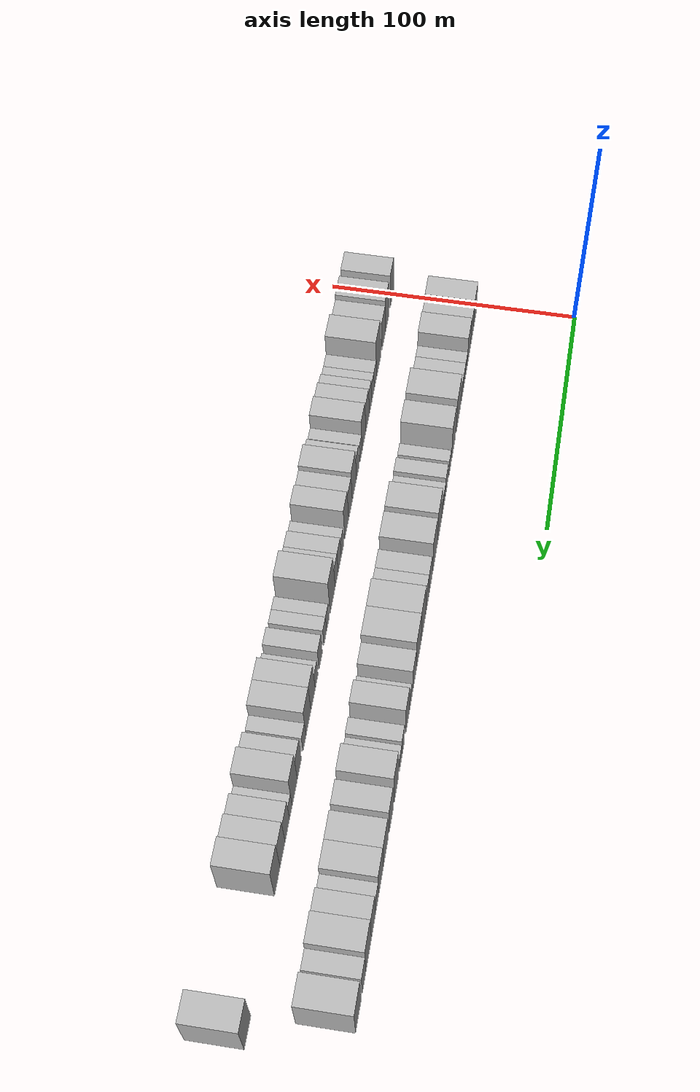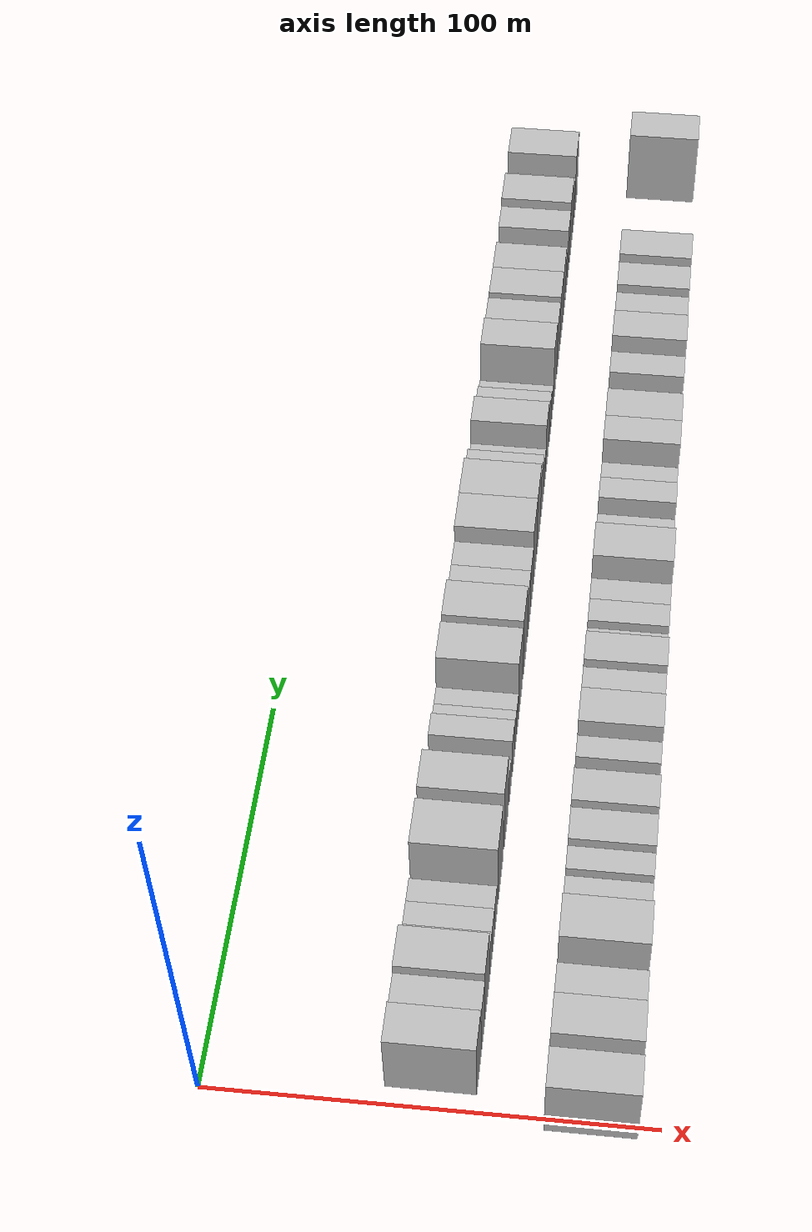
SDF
<sdf version="1.6">
 <world name="default">
  <model name="building_35">
   <static>1</static>
   <pose>50.0000 8.7507 0 0.000000 0.000000 0.000000</pose>
   <link name="link">
    <pose>0 0 10.50 0 0 0</pose>
    <collision name="collision"><geometry><box><size>20.0000 9.2780 21.0000</size></box></geometry></collision>
    <visual name="visual">
     <cast_shadows>0</cast_shadows>
     <geometry><box><size>20.0000 9.2780 21.0000</size></box></geometry>
     <material>
      <script>
       <uri>model://HANNAS_wall/materials/scripts</uri>
       <uri>model://HANNAS_wall/materials/textures</uri>
       <name>vrc/HANNAS_wall</name>
      </script>
     </material>
    </visual>
   </link>
  </model>
  <model name="building_36">
   <static>1</static>
   <pose>50.0000 17.6079 0 0.000000 0.000000 0.000000</pose>
   <link name="link">
    <pose>0 0 9.00 0 0 0</pose>
    <collision name="collision"><geometry><box><size>20.0000 8.4364 18.0000</size></box></geometry></collision>
    <visual name="visual">
     <cast_shadows>0</cast_shadows>
     <geometry><box><size>20.0000 8.4364 18.0000</size></box></geometry>
     <material>
      <script>
       <uri>model://HANNAS_wall/materials/scripts</uri>
       <uri>model://HANNAS_wall/materials/textures</uri>
       <name>vrc/HANNAS_wall</name>
      </script>
     </material>
    </visual>
   </link>
  </model>
  <model name="building_37">
   <static>1</static>
   <pose>50.0000 26.8337 0 0.000000 0.000000 0.000000</pose>
   <link name="link">
    <pose>0 0 10.50 0 0 0</pose>
    <collision name="collision"><geometry><box><size>20.0000 10.0153 21.0000</size></box></geometry></collision>
    <visual name="visual">
     <cast_shadows>0</cast_shadows>
     <geometry><box><size>20.0000 10.0153 21.0000</size></box></geometry>
     <material>
      <script>
       <uri>model://HANNAS_wall/materials/scripts</uri>
       <uri>model://HANNAS_wall/materials/textures</uri>
       <name>vrc/HANNAS_wall</name>
      </script>
     </material>
    </visual>
   </link>
  </model>
  <model name="building_38">
   <static>1</static>
   <pose>50.0000 34.4744 0 0.000000 0.000000 0.000000</pose>
   <link name="link">
    <pose>0 0 6.00 0 0 0</pose>
    <collision name="collision"><geometry><box><size>20.0000 5.2660 12.0000</size></box></geometry></collision>
    <visual name="visual">
     <cast_shadows>0</cast_shadows>
     <geometry><box><size>20.0000 5.2660 12.0000</size></box></geometry>
     <material>
      <script>
       <uri>model://HANNAS_wall/materials/scripts</uri>
       <uri>model://HANNAS_wall/materials/textures</uri>
       <name>vrc/HANNAS_wall</name>
      </script>
     </material>
    </visual>
   </link>
  </model>
  <model name="building_39">
   <static>1</static>
   <pose>50.0000 40.0444 0 0.000000 0.000000 0.000000</pose>
   <link name="link">
    <pose>0 0 6.00 0 0 0</pose>
    <collision name="collision"><geometry><box><size>20.0000 5.8741 12.0000</size></box></geometry></collision>
    <visual name="visual">
     <cast_shadows>0</cast_shadows>
     <geometry><box><size>20.0000 5.8741 12.0000</size></box></geometry>
     <material>
      <script>
       <uri>model://HANNAS_wall/materials/scripts</uri>
       <uri>model://HANNAS_wall/materials/textures</uri>
       <name>vrc/HANNAS_wall</name>
      </script>
     </material>
    </visual>
   </link>
  </model>
  <model name="building_40">
   <static>1</static>
   <pose>50.0000 45.8900 0 0.000000 0.000000 0.000000</pose>
   <link name="link">
    <pose>0 0 6.00 0 0 0</pose>
    <collision name="collision"><geometry><box><size>20.0000 5.8171 12.0000</size></box></geometry></collision>
    <visual name="visual">
     <cast_shadows>0</cast_shadows>
     <geometry><box><size>20.0000 5.8171 12.0000</size></box></geometry>
     <material>
      <script>
       <uri>model://HANNAS_wall/materials/scripts</uri>
       <uri>model://HANNAS_wall/materials/textures</uri>
       <name>vrc/HANNAS_wall</name>
      </script>
     </material>
    </visual>
   </link>
  </model>
  <model name="building_41">
   <static>1</static>
   <pose>50.0000 56.6589 0 0.000000 0.000000 0.000000</pose>
   <link name="link">
    <pose>0 0 12.00 0 0 0</pose>
    <collision name="collision"><geometry><box><size>20.0000 11.7206 24.0000</size></box></geometry></collision>
    <visual name="visual">
     <cast_shadows>0</cast_shadows>
     <geometry><box><size>20.0000 11.7206 24.0000</size></box></geometry>
     <material>
      <script>
       <uri>model://HANNAS_wall/materials/scripts</uri>
       <uri>model://HANNAS_wall/materials/textures</uri>
       <name>vrc/HANNAS_wall</name>
      </script>
     </material>
    </visual>
   </link>
  </model>
  <model name="building_42">
   <static>1</static>
   <pose>50.0000 70.6065 0 0.000000 0.000000 0.000000</pose>
   <link name="link">
    <pose>0 0 12.00 0 0 0</pose>
    <collision name="collision"><geometry><box><size>20.0000 10.1746 24.0000</size></box></geometry></collision>
    <visual name="visual">
     <cast_shadows>0</cast_shadows>
     <geometry><box><size>20.0000 10.1746 24.0000</size></box></geometry>
     <material>
      <script>
       <uri>model://HANNAS_wall/materials/scripts</uri>
       <uri>model://HANNAS_wall/materials/textures</uri>
       <name>vrc/HANNAS_wall</name>
      </script>
     </material>
    </visual>
   </link>
  </model>
  <model name="building_43">
   <static>1</static>
   <pose>50.0000 80.3176 0 0.000000 0.000000 0.000000</pose>
   <link name="link">
    <pose>0 0 6.00 0 0 0</pose>
    <collision name="collision"><geometry><box><size>20.0000 5.2476 12.0000</size></box></geometry></collision>
    <visual name="visual">
     <cast_shadows>0</cast_shadows>
     <geometry><box><size>20.0000 5.2476 12.0000</size></box></geometry>
     <material>
      <script>
       <uri>model://HANNAS_wall/materials/scripts</uri>
       <uri>model://HANNAS_wall/materials/textures</uri>
       <name>vrc/HANNAS_wall</name>
      </script>
     </material>
    </visual>
   </link>
  </model>
  <model name="building_44">
   <static>1</static>
   <pose>50.0000 89.0435 0 0.000000 0.000000 0.000000</pose>
   <link name="link">
    <pose>0 0 7.50 0 0 0</pose>
    <collision name="collision"><geometry><box><size>20.0000 6.2043 15.0000</size></box></geometry></collision>
    <visual name="visual">
     <cast_shadows>0</cast_shadows>
     <geometry><box><size>20.0000 6.2043 15.0000</size></box></geometry>
     <material>
      <script>
       <uri>model://HANNAS_wall/materials/scripts</uri>
       <uri>model://HANNAS_wall/materials/textures</uri>
       <name>vrc/HANNAS_wall</name>
      </script>
     </material>
    </visual>
   </link>
  </model>
  <model name="building_45">
   <static>1</static>
   <pose>50.0000 94.5717 0 0.000000 0.000000 0.000000</pose>
   <link name="link">
    <pose>0 0 6.00 0 0 0</pose>
    <collision name="collision"><geometry><box><size>20.0000 4.8520 12.0000</size></box></geometry></collision>
    <visual name="visual">
     <cast_shadows>0</cast_shadows>
     <geometry><box><size>20.0000 4.8520 12.0000</size></box></geometry>
     <material>
      <script>
       <uri>model://HANNAS_wall/materials/scripts</uri>
       <uri>model://HANNAS_wall/materials/textures</uri>
       <name>vrc/HANNAS_wall</name>
      </script>
     </material>
    </visual>
   </link>
  </model>
  <model name="building_46">
   <static>1</static>
   <pose>50.0000 99.4362 0 0.000000 0.000000 0.000000</pose>
   <link name="link">
    <pose>0 0 6.00 0 0 0</pose>
    <collision name="collision"><geometry><box><size>20.0000 4.8771 12.0000</size></box></geometry></collision>
    <visual name="visual">
     <cast_shadows>0</cast_shadows>
     <geometry><box><size>20.0000 4.8771 12.0000</size></box></geometry>
     <material>
      <script>
       <uri>model://HANNAS_wall/materials/scripts</uri>
       <uri>model://HANNAS_wall/materials/textures</uri>
       <name>vrc/HANNAS_wall</name>
      </script>
     </material>
    </visual>
   </link>
  </model>
  <model name="building_47">
   <static>1</static>
   <pose>50.0000 107.2916 0 0.000000 0.000000 0.000000</pose>
   <link name="link">
    <pose>0 0 12.00 0 0 0</pose>
    <collision name="collision"><geometry><box><size>20.0000 10.8336 24.0000</size></box></geometry></collision>
    <visual name="visual">
     <cast_shadows>0</cast_shadows>
     <geometry><box><size>20.0000 10.8336 24.0000</size></box></geometry>
     <material>
      <script>
       <uri>model://HANNAS_wall/materials/scripts</uri>
       <uri>model://HANNAS_wall/materials/textures</uri>
       <name>vrc/HANNAS_wall</name>
      </script>
     </material>
    </visual>
   </link>
  </model>
  <model name="building_48">
   <static>1</static>
   <pose>50.0000 120.1184 0 0.000000 0.000000 0.000000</pose>
   <link name="link">
    <pose>0 0 12.00 0 0 0</pose>
    <collision name="collision"><geometry><box><size>20.0000 10.8199 24.0000</size></box></geometry></collision>
    <visual name="visual">
     <cast_shadows>0</cast_shadows>
     <geometry><box><size>20.0000 10.8199 24.0000</size></box></geometry>
     <material>
      <script>
       <uri>model://HANNAS_wall/materials/scripts</uri>
       <uri>model://HANNAS_wall/materials/textures</uri>
       <name>vrc/HANNAS_wall</name>
      </script>
     </material>
    </visual>
   </link>
  </model>
  <model name="building_49">
   <static>1</static>
   <pose>50.0000 131.3602 0 0.000000 0.000000 0.000000</pose>
   <link name="link">
    <pose>0 0 9.00 0 0 0</pose>
    <collision name="collision"><geometry><box><size>20.0000 7.6637 18.0000</size></box></geometry></collision>
    <visual name="visual">
     <cast_shadows>0</cast_shadows>
     <geometry><box><size>20.0000 7.6637 18.0000</size></box></geometry>
     <material>
      <script>
       <uri>model://HANNAS_wall/materials/scripts</uri>
       <uri>model://HANNAS_wall/materials/textures</uri>
       <name>vrc/HANNAS_wall</name>
      </script>
     </material>
    </visual>
   </link>
  </model>
  <model name="building_50">
   <static>1</static>
   <pose>50.0000 138.9554 0 0.000000 0.000000 0.000000</pose>
   <link name="link">
    <pose>0 0 9.00 0 0 0</pose>
    <collision name="collision"><geometry><box><size>20.0000 7.5268 18.0000</size></box></geometry></collision>
    <visual name="visual">
     <cast_shadows>0</cast_shadows>
     <geometry><box><size>20.0000 7.5268 18.0000</size></box></geometry>
     <material>
      <script>
       <uri>model://HANNAS_wall/materials/scripts</uri>
       <uri>model://HANNAS_wall/materials/textures</uri>
       <name>vrc/HANNAS_wall</name>
      </script>
     </material>
    </visual>
   </link>
  </model>
  <model name="building_51">
   <static>1</static>
   <pose>50.0000 148.2632 0 0.000000 0.000000 0.000000</pose>
   <link name="link">
    <pose>0 0 12.00 0 0 0</pose>
    <collision name="collision"><geometry><box><size>20.0000 11.0887 24.0000</size></box></geometry></collision>
    <visual name="visual">
     <cast_shadows>0</cast_shadows>
     <geometry><box><size>20.0000 11.0887 24.0000</size></box></geometry>
     <material>
      <script>
       <uri>model://HANNAS_wall/materials/scripts</uri>
       <uri>model://HANNAS_wall/materials/textures</uri>
       <name>vrc/HANNAS_wall</name>
      </script>
     </material>
    </visual>
   </link>
  </model>
  <model name="building_52">
   <static>1</static>
   <pose>50.0000 159.6565 0 0.000000 0.000000 0.000000</pose>
   <link name="link">
    <pose>0 0 12.00 0 0 0</pose>
    <collision name="collision"><geometry><box><size>20.0000 11.6979 24.0000</size></box></geometry></collision>
    <visual name="visual">
     <cast_shadows>0</cast_shadows>
     <geometry><box><size>20.0000 11.6979 24.0000</size></box></geometry>
     <material>
      <script>
       <uri>model://HANNAS_wall/materials/scripts</uri>
       <uri>model://HANNAS_wall/materials/textures</uri>
       <name>vrc/HANNAS_wall</name>
      </script>
     </material>
    </visual>
   </link>
  </model>
  <model name="building_53">
   <static>1</static>
   <pose>50.0000 169.7641 0 0.000000 0.000000 0.000000</pose>
   <link name="link">
    <pose>0 0 9.00 0 0 0</pose>
    <collision name="collision"><geometry><box><size>20.0000 8.5172 18.0000</size></box></geometry></collision>
    <visual name="visual">
     <cast_shadows>0</cast_shadows>
     <geometry><box><size>20.0000 8.5172 18.0000</size></box></geometry>
     <material>
      <script>
       <uri>model://HANNAS_wall/materials/scripts</uri>
       <uri>model://HANNAS_wall/materials/textures</uri>
       <name>vrc/HANNAS_wall</name>
      </script>
     </material>
    </visual>
   </link>
  </model>
  <model name="building_54">
   <static>1</static>
   <pose>50.0000 178.7711 0 0.000000 0.000000 0.000000</pose>
   <link name="link">
    <pose>0 0 6.00 0 0 0</pose>
    <collision name="collision"><geometry><box><size>20.0000 5.4969 12.0000</size></box></geometry></collision>
    <visual name="visual">
     <cast_shadows>0</cast_shadows>
     <geometry><box><size>20.0000 5.4969 12.0000</size></box></geometry>
     <material>
      <script>
       <uri>model://HANNAS_wall/materials/scripts</uri>
       <uri>model://HANNAS_wall/materials/textures</uri>
       <name>vrc/HANNAS_wall</name>
      </script>
     </material>
    </visual>
   </link>
  </model>
  <model name="building_55">
   <static>1</static>
   <pose>50.0000 185.8863 0 0.000000 0.000000 0.000000</pose>
   <link name="link">
    <pose>0 0 10.50 0 0 0</pose>
    <collision name="collision"><geometry><box><size>20.0000 8.7335 21.0000</size></box></geometry></collision>
    <visual name="visual">
     <cast_shadows>0</cast_shadows>
     <geometry><box><size>20.0000 8.7335 21.0000</size></box></geometry>
     <material>
      <script>
       <uri>model://HANNAS_wall/materials/scripts</uri>
       <uri>model://HANNAS_wall/materials/textures</uri>
       <name>vrc/HANNAS_wall</name>
      </script>
     </material>
    </visual>
   </link>
  </model>
  <model name="building_56">
   <static>1</static>
   <pose>50.0000 196.4135 0 0.000000 0.000000 0.000000</pose>
   <link name="link">
    <pose>0 0 7.50 0 0 0</pose>
    <collision name="collision"><geometry><box><size>20.0000 6.3210 15.0000</size></box></geometry></collision>
    <visual name="visual">
     <cast_shadows>0</cast_shadows>
     <geometry><box><size>20.0000 6.3210 15.0000</size></box></geometry>
     <material>
      <script>
       <uri>model://HANNAS_wall/materials/scripts</uri>
       <uri>model://HANNAS_wall/materials/textures</uri>
       <name>vrc/HANNAS_wall</name>
      </script>
     </material>
    </visual>
   </link>
  </model>
  <model name="building_57">
   <static>1</static>
   <pose>50.0000 202.1639 0 0.000000 0.000000 0.000000</pose>
   <link name="link">
    <pose>0 0 6.00 0 0 0</pose>
    <collision name="collision"><geometry><box><size>20.0000 5.1798 12.0000</size></box></geometry></collision>
    <visual name="visual">
     <cast_shadows>0</cast_shadows>
     <geometry><box><size>20.0000 5.1798 12.0000</size></box></geometry>
     <material>
      <script>
       <uri>model://HANNAS_wall/materials/scripts</uri>
       <uri>model://HANNAS_wall/materials/textures</uri>
       <name>vrc/HANNAS_wall</name>
      </script>
     </material>
    </visual>
   </link>
  </model>
  <model name="building_58">
   <static>1</static>
   <pose>50.0000 211.7438 0 0.000000 0.000000 0.000000</pose>
   <link name="link">
    <pose>0 0 12.00 0 0 0</pose>
    <collision name="collision"><geometry><box><size>20.0000 9.9800 24.0000</size></box></geometry></collision>
    <visual name="visual">
     <cast_shadows>0</cast_shadows>
     <geometry><box><size>20.0000 9.9800 24.0000</size></box></geometry>
     <material>
      <script>
       <uri>model://HANNAS_wall/materials/scripts</uri>
       <uri>model://HANNAS_wall/materials/textures</uri>
       <name>vrc/HANNAS_wall</name>
      </script>
     </material>
    </visual>
   </link>
  </model>
  <model name="building_59">
   <static>1</static>
   <pose>50.0000 223.2712 0 0.000000 0.000000 0.000000</pose>
   <link name="link">
    <pose>0 0 10.50 0 0 0</pose>
    <collision name="collision"><geometry><box><size>20.0000 9.0747 21.0000</size></box></geometry></collision>
    <visual name="visual">
     <cast_shadows>0</cast_shadows>
     <geometry><box><size>20.0000 9.0747 21.0000</size></box></geometry>
     <material>
      <script>
       <uri>model://HANNAS_wall/materials/scripts</uri>
       <uri>model://HANNAS_wall/materials/textures</uri>
       <name>vrc/HANNAS_wall</name>
      </script>
     </material>
    </visual>
   </link>
  </model>
  <model name="building_60">
   <static>1</static>
   <pose>50.0000 234.9717 0 0.000000 0.000000 0.000000</pose>
   <link name="link">
    <pose>0 0 10.50 0 0 0</pose>
    <collision name="collision"><geometry><box><size>20.0000 10.3262 21.0000</size></box></geometry></collision>
    <visual name="visual">
     <cast_shadows>0</cast_shadows>
     <geometry><box><size>20.0000 10.3262 21.0000</size></box></geometry>
     <material>
      <script>
       <uri>model://HANNAS_wall/materials/scripts</uri>
       <uri>model://HANNAS_wall/materials/textures</uri>
       <name>vrc/HANNAS_wall</name>
      </script>
     </material>
    </visual>
   </link>
  </model>
  <model name="building_61">
   <static>1</static>
   <pose>50.0000 245.2067 0 0.000000 0.000000 0.000000</pose>
   <link name="link">
    <pose>0 0 10.50 0 0 0</pose>
    <collision name="collision"><geometry><box><size>20.0000 10.1438 21.0000</size></box></geometry></collision>
    <visual name="visual">
     <cast_shadows>0</cast_shadows>
     <geometry><box><size>20.0000 10.1438 21.0000</size></box></geometry>
     <material>
      <script>
       <uri>model://HANNAS_wall/materials/scripts</uri>
       <uri>model://HANNAS_wall/materials/textures</uri>
       <name>vrc/HANNAS_wall</name>
      </script>
     </material>
    </visual>
   </link>
  </model>
  <model name="building_62">
   <static>1</static>
   <pose>50.0000 253.5628 0 0.000000 0.000000 0.000000</pose>
   <link name="link">
    <pose>0 0 7.50 0 0 0</pose>
    <collision name="collision"><geometry><box><size>20.0000 6.5683 15.0000</size></box></geometry></collision>
    <visual name="visual">
     <cast_shadows>0</cast_shadows>
     <geometry><box><size>20.0000 6.5683 15.0000</size></box></geometry>
     <material>
      <script>
       <uri>model://HANNAS_wall/materials/scripts</uri>
       <uri>model://HANNAS_wall/materials/textures</uri>
       <name>vrc/HANNAS_wall</name>
      </script>
     </material>
    </visual>
   </link>
  </model>
  <model name="building_63">
   <static>1</static>
   <pose>50.0000 261.2001 0 0.000000 0.000000 0.000000</pose>
   <link name="link">
    <pose>0 0 10.50 0 0 0</pose>
    <collision name="collision"><geometry><box><size>20.0000 8.7063 21.0000</size></box></geometry></collision>
    <visual name="visual">
     <cast_shadows>0</cast_shadows>
     <geometry><box><size>20.0000 8.7063 21.0000</size></box></geometry>
     <material>
      <script>
       <uri>model://HANNAS_wall/materials/scripts</uri>
       <uri>model://HANNAS_wall/materials/textures</uri>
       <name>vrc/HANNAS_wall</name>
      </script>
     </material>
    </visual>
   </link>
  </model>
  <model name="building_64">
   <static>1</static>
   <pose>50.0000 270.9982 0 0.000000 0.000000 0.000000</pose>
   <link name="link">
    <pose>0 0 12.00 0 0 0</pose>
    <collision name="collision"><geometry><box><size>20.0000 10.8898 24.0000</size></box></geometry></collision>
    <visual name="visual">
     <cast_shadows>0</cast_shadows>
     <geometry><box><size>20.0000 10.8898 24.0000</size></box></geometry>
     <material>
      <script>
       <uri>model://HANNAS_wall/materials/scripts</uri>
       <uri>model://HANNAS_wall/materials/textures</uri>
       <name>vrc/HANNAS_wall</name>
      </script>
     </material>
    </visual>
   </link>
  </model>
  <model name="building_65">
   <static>1</static>
   <pose>50.0000 280.0937 0 0.000000 0.000000 0.000000</pose>
   <link name="link">
    <pose>0 0 9.00 0 0 0</pose>
    <collision name="collision"><geometry><box><size>20.0000 7.3012 18.0000</size></box></geometry></collision>
    <visual name="visual">
     <cast_shadows>0</cast_shadows>
     <geometry><box><size>20.0000 7.3012 18.0000</size></box></geometry>
     <material>
      <script>
       <uri>model://HANNAS_wall/materials/scripts</uri>
       <uri>model://HANNAS_wall/materials/textures</uri>
       <name>vrc/HANNAS_wall</name>
      </script>
     </material>
    </visual>
   </link>
  </model>
  <model name="building_66">
   <static>1</static>
   <pose>50.0000 291.3657 0 0.000000 0.000000 0.000000</pose>
   <link name="link">
    <pose>0 0 12.00 0 0 0</pose>
    <collision name="collision"><geometry><box><size>20.0000 11.2427 24.0000</size></box></geometry></collision>
    <visual name="visual">
     <cast_shadows>0</cast_shadows>
     <geometry><box><size>20.0000 11.2427 24.0000</size></box></geometry>
     <material>
      <script>
       <uri>model://HANNAS_wall/materials/scripts</uri>
       <uri>model://HANNAS_wall/materials/textures</uri>
       <name>vrc/HANNAS_wall</name>
      </script>
     </material>
    </visual>
   </link>
  </model>
  <model name="building_97">
   <static>1</static>
   <pose>85.0000 2.1428 0 0.000000 0.000000 0.000000</pose>
   <link name="link">
    <pose>0 0 10.50 0 0 0</pose>
    <collision name="collision"><geometry><box><size>20.0000 9.1872 21.0000</size></box></geometry></collision>
    <visual name="visual">
     <cast_shadows>0</cast_shadows>
     <geometry><box><size>20.0000 9.1872 21.0000</size></box></geometry>
     <material>
      <script>
       <uri>model://HANNAS_wall/materials/scripts</uri>
       <uri>model://HANNAS_wall/materials/textures</uri>
       <name>vrc/HANNAS_wall</name>
      </script>
     </material>
    </visual>
   </link>
  </model>
  <model name="building_98">
   <static>1</static>
   <pose>85.0000 14.4837 0 0.000000 0.000000 0.000000</pose>
   <link name="link">
    <pose>0 0 10.50 0 0 0</pose>
    <collision name="collision"><geometry><box><size>20.0000 9.4946 21.0000</size></box></geometry></collision>
    <visual name="visual">
     <cast_shadows>0</cast_shadows>
     <geometry><box><size>20.0000 9.4946 21.0000</size></box></geometry>
     <material>
      <script>
       <uri>model://HANNAS_wall/materials/scripts</uri>
       <uri>model://HANNAS_wall/materials/textures</uri>
       <name>vrc/HANNAS_wall</name>
      </script>
     </material>
    </visual>
   </link>
  </model>
  <model name="building_99">
   <static>1</static>
   <pose>85.0000 23.5732 0 0.000000 0.000000 0.000000</pose>
   <link name="link">
    <pose>0 0 9.00 0 0 0</pose>
    <collision name="collision"><geometry><box><size>20.0000 8.6843 18.0000</size></box></geometry></collision>
    <visual name="visual">
     <cast_shadows>0</cast_shadows>
     <geometry><box><size>20.0000 8.6843 18.0000</size></box></geometry>
     <material>
      <script>
       <uri>model://HANNAS_wall/materials/scripts</uri>
       <uri>model://HANNAS_wall/materials/textures</uri>
       <name>vrc/HANNAS_wall</name>
      </script>
     </material>
    </visual>
   </link>
  </model>
  <model name="building_100">
   <static>1</static>
   <pose>85.0000 36.2213 0 0.000000 0.000000 0.000000</pose>
   <link name="link">
    <pose>0 0 12.00 0 0 0</pose>
    <collision name="collision"><geometry><box><size>20.0000 10.6118 24.0000</size></box></geometry></collision>
    <visual name="visual">
     <cast_shadows>0</cast_shadows>
     <geometry><box><size>20.0000 10.6118 24.0000</size></box></geometry>
     <material>
      <script>
       <uri>model://HANNAS_wall/materials/scripts</uri>
       <uri>model://HANNAS_wall/materials/textures</uri>
       <name>vrc/HANNAS_wall</name>
      </script>
     </material>
    </visual>
   </link>
  </model>
  <model name="building_101">
   <static>1</static>
   <pose>85.0000 44.4388 0 0.000000 0.000000 0.000000</pose>
   <link name="link">
    <pose>0 0 6.00 0 0 0</pose>
    <collision name="collision"><geometry><box><size>20.0000 5.8232 12.0000</size></box></geometry></collision>
    <visual name="visual">
     <cast_shadows>0</cast_shadows>
     <geometry><box><size>20.0000 5.8232 12.0000</size></box></geometry>
     <material>
      <script>
       <uri>model://HANNAS_wall/materials/scripts</uri>
       <uri>model://HANNAS_wall/materials/textures</uri>
       <name>vrc/HANNAS_wall</name>
      </script>
     </material>
    </visual>
   </link>
  </model>
  <model name="building_102">
   <static>1</static>
   <pose>85.0000 50.2223 0 0.000000 0.000000 0.000000</pose>
   <link name="link">
    <pose>0 0 6.00 0 0 0</pose>
    <collision name="collision"><geometry><box><size>20.0000 5.7438 12.0000</size></box></geometry></collision>
    <visual name="visual">
     <cast_shadows>0</cast_shadows>
     <geometry><box><size>20.0000 5.7438 12.0000</size></box></geometry>
     <material>
      <script>
       <uri>model://HANNAS_wall/materials/scripts</uri>
       <uri>model://HANNAS_wall/materials/textures</uri>
       <name>vrc/HANNAS_wall</name>
      </script>
     </material>
    </visual>
   </link>
  </model>
  <model name="building_103">
   <static>1</static>
   <pose>85.0000 56.1045 0 0.000000 0.000000 0.000000</pose>
   <link name="link">
    <pose>0 0 7.50 0 0 0</pose>
    <collision name="collision"><geometry><box><size>20.0000 6.0206 15.0000</size></box></geometry></collision>
    <visual name="visual">
     <cast_shadows>0</cast_shadows>
     <geometry><box><size>20.0000 6.0206 15.0000</size></box></geometry>
     <material>
      <script>
       <uri>model://HANNAS_wall/materials/scripts</uri>
       <uri>model://HANNAS_wall/materials/textures</uri>
       <name>vrc/HANNAS_wall</name>
      </script>
     </material>
    </visual>
   </link>
  </model>
  <model name="building_104">
   <static>1</static>
   <pose>85.0000 63.3136 0 0.000000 0.000000 0.000000</pose>
   <link name="link">
    <pose>0 0 9.00 0 0 0</pose>
    <collision name="collision"><geometry><box><size>20.0000 8.3978 18.0000</size></box></geometry></collision>
    <visual name="visual">
     <cast_shadows>0</cast_shadows>
     <geometry><box><size>20.0000 8.3978 18.0000</size></box></geometry>
     <material>
      <script>
       <uri>model://HANNAS_wall/materials/scripts</uri>
       <uri>model://HANNAS_wall/materials/textures</uri>
       <name>vrc/HANNAS_wall</name>
      </script>
     </material>
    </visual>
   </link>
  </model>
  <model name="building_105">
   <static>1</static>
   <pose>85.0000 71.8648 0 0.000000 0.000000 0.000000</pose>
   <link name="link">
    <pose>0 0 10.50 0 0 0</pose>
    <collision name="collision"><geometry><box><size>20.0000 8.7046 21.0000</size></box></geometry></collision>
    <visual name="visual">
     <cast_shadows>0</cast_shadows>
     <geometry><box><size>20.0000 8.7046 21.0000</size></box></geometry>
     <material>
      <script>
       <uri>model://HANNAS_wall/materials/scripts</uri>
       <uri>model://HANNAS_wall/materials/textures</uri>
       <name>vrc/HANNAS_wall</name>
      </script>
     </material>
    </visual>
   </link>
  </model>
  <model name="building_106">
   <static>1</static>
   <pose>85.0000 78.7348 0 0.000000 0.000000 0.000000</pose>
   <link name="link">
    <pose>0 0 6.00 0 0 0</pose>
    <collision name="collision"><geometry><box><size>20.0000 5.0354 12.0000</size></box></geometry></collision>
    <visual name="visual">
     <cast_shadows>0</cast_shadows>
     <geometry><box><size>20.0000 5.0354 12.0000</size></box></geometry>
     <material>
      <script>
       <uri>model://HANNAS_wall/materials/scripts</uri>
       <uri>model://HANNAS_wall/materials/textures</uri>
       <name>vrc/HANNAS_wall</name>
      </script>
     </material>
    </visual>
   </link>
  </model>
  <model name="building_107">
   <static>1</static>
   <pose>85.0000 86.2982 0 0.000000 0.000000 0.000000</pose>
   <link name="link">
    <pose>0 0 7.50 0 0 0</pose>
    <collision name="collision"><geometry><box><size>20.0000 6.0913 15.0000</size></box></geometry></collision>
    <visual name="visual">
     <cast_shadows>0</cast_shadows>
     <geometry><box><size>20.0000 6.0913 15.0000</size></box></geometry>
     <material>
      <script>
       <uri>model://HANNAS_wall/materials/scripts</uri>
       <uri>model://HANNAS_wall/materials/textures</uri>
       <name>vrc/HANNAS_wall</name>
      </script>
     </material>
    </visual>
   </link>
  </model>
  <model name="building_108">
   <static>1</static>
   <pose>85.0000 94.1602 0 0.000000 0.000000 0.000000</pose>
   <link name="link">
    <pose>0 0 10.50 0 0 0</pose>
    <collision name="collision"><geometry><box><size>20.0000 9.6328 21.0000</size></box></geometry></collision>
    <visual name="visual">
     <cast_shadows>0</cast_shadows>
     <geometry><box><size>20.0000 9.6328 21.0000</size></box></geometry>
     <material>
      <script>
       <uri>model://HANNAS_wall/materials/scripts</uri>
       <uri>model://HANNAS_wall/materials/textures</uri>
       <name>vrc/HANNAS_wall</name>
      </script>
     </material>
    </visual>
   </link>
  </model>
  <model name="building_109">
   <static>1</static>
   <pose>85.0000 103.0682 0 0.000000 0.000000 0.000000</pose>
   <link name="link">
    <pose>0 0 9.00 0 0 0</pose>
    <collision name="collision"><geometry><box><size>20.0000 8.1831 18.0000</size></box></geometry></collision>
    <visual name="visual">
     <cast_shadows>0</cast_shadows>
     <geometry><box><size>20.0000 8.1831 18.0000</size></box></geometry>
     <material>
      <script>
       <uri>model://HANNAS_wall/materials/scripts</uri>
       <uri>model://HANNAS_wall/materials/textures</uri>
       <name>vrc/HANNAS_wall</name>
      </script>
     </material>
    </visual>
   </link>
  </model>
  <model name="building_110">
   <static>1</static>
   <pose>85.0000 111.4145 0 0.000000 0.000000 0.000000</pose>
   <link name="link">
    <pose>0 0 10.50 0 0 0</pose>
    <collision name="collision"><geometry><box><size>20.0000 8.5095 21.0000</size></box></geometry></collision>
    <visual name="visual">
     <cast_shadows>0</cast_shadows>
     <geometry><box><size>20.0000 8.5095 21.0000</size></box></geometry>
     <material>
      <script>
       <uri>model://HANNAS_wall/materials/scripts</uri>
       <uri>model://HANNAS_wall/materials/textures</uri>
       <name>vrc/HANNAS_wall</name>
      </script>
     </material>
    </visual>
   </link>
  </model>
  <model name="building_111">
   <static>1</static>
   <pose>85.0000 120.5958 0 0.000000 0.000000 0.000000</pose>
   <link name="link">
    <pose>0 0 6.00 0 0 0</pose>
    <collision name="collision"><geometry><box><size>20.0000 5.8531 12.0000</size></box></geometry></collision>
    <visual name="visual">
     <cast_shadows>0</cast_shadows>
     <geometry><box><size>20.0000 5.8531 12.0000</size></box></geometry>
     <material>
      <script>
       <uri>model://HANNAS_wall/materials/scripts</uri>
       <uri>model://HANNAS_wall/materials/textures</uri>
       <name>vrc/HANNAS_wall</name>
      </script>
     </material>
    </visual>
   </link>
  </model>
  <model name="building_112">
   <static>1</static>
   <pose>85.0000 126.9229 0 0.000000 0.000000 0.000000</pose>
   <link name="link">
    <pose>0 0 7.50 0 0 0</pose>
    <collision name="collision"><geometry><box><size>20.0000 6.8013 15.0000</size></box></geometry></collision>
    <visual name="visual">
     <cast_shadows>0</cast_shadows>
     <geometry><box><size>20.0000 6.8013 15.0000</size></box></geometry>
     <material>
      <script>
       <uri>model://HANNAS_wall/materials/scripts</uri>
       <uri>model://HANNAS_wall/materials/textures</uri>
       <name>vrc/HANNAS_wall</name>
      </script>
     </material>
    </visual>
   </link>
  </model>
  <model name="building_113">
   <static>1</static>
   <pose>85.0000 133.5734 0 0.000000 0.000000 0.000000</pose>
   <link name="link">
    <pose>0 0 7.50 0 0 0</pose>
    <collision name="collision"><geometry><box><size>20.0000 6.4997 15.0000</size></box></geometry></collision>
    <visual name="visual">
     <cast_shadows>0</cast_shadows>
     <geometry><box><size>20.0000 6.4997 15.0000</size></box></geometry>
     <material>
      <script>
       <uri>model://HANNAS_wall/materials/scripts</uri>
       <uri>model://HANNAS_wall/materials/textures</uri>
       <name>vrc/HANNAS_wall</name>
      </script>
     </material>
    </visual>
   </link>
  </model>
  <model name="building_114">
   <static>1</static>
   <pose>85.0000 142.1762 0 0.000000 0.000000 0.000000</pose>
   <link name="link">
    <pose>0 0 12.00 0 0 0</pose>
    <collision name="collision"><geometry><box><size>20.0000 10.7058 24.0000</size></box></geometry></collision>
    <visual name="visual">
     <cast_shadows>0</cast_shadows>
     <geometry><box><size>20.0000 10.7058 24.0000</size></box></geometry>
     <material>
      <script>
       <uri>model://HANNAS_wall/materials/scripts</uri>
       <uri>model://HANNAS_wall/materials/textures</uri>
       <name>vrc/HANNAS_wall</name>
      </script>
     </material>
    </visual>
   </link>
  </model>
  <model name="building_115">
   <static>1</static>
   <pose>85.0000 152.1849 0 0.000000 0.000000 0.000000</pose>
   <link name="link">
    <pose>0 0 6.00 0 0 0</pose>
    <collision name="collision"><geometry><box><size>20.0000 5.3116 12.0000</size></box></geometry></collision>
    <visual name="visual">
     <cast_shadows>0</cast_shadows>
     <geometry><box><size>20.0000 5.3116 12.0000</size></box></geometry>
     <material>
      <script>
       <uri>model://HANNAS_wall/materials/scripts</uri>
       <uri>model://HANNAS_wall/materials/textures</uri>
       <name>vrc/HANNAS_wall</name>
      </script>
     </material>
    </visual>
   </link>
  </model>
  <model name="building_116">
   <static>1</static>
   <pose>85.0000 157.6933 0 0.000000 0.000000 0.000000</pose>
   <link name="link">
    <pose>0 0 6.00 0 0 0</pose>
    <collision name="collision"><geometry><box><size>20.0000 5.7053 12.0000</size></box></geometry></collision>
    <visual name="visual">
     <cast_shadows>0</cast_shadows>
     <geometry><box><size>20.0000 5.7053 12.0000</size></box></geometry>
     <material>
      <script>
       <uri>model://HANNAS_wall/materials/scripts</uri>
       <uri>model://HANNAS_wall/materials/textures</uri>
       <name>vrc/HANNAS_wall</name>
      </script>
     </material>
    </visual>
   </link>
  </model>
  <model name="building_117">
   <static>1</static>
   <pose>85.0000 167.0567 0 0.000000 0.000000 0.000000</pose>
   <link name="link">
    <pose>0 0 7.50 0 0 0</pose>
    <collision name="collision"><geometry><box><size>20.0000 7.0215 15.0000</size></box></geometry></collision>
    <visual name="visual">
     <cast_shadows>0</cast_shadows>
     <geometry><box><size>20.0000 7.0215 15.0000</size></box></geometry>
     <material>
      <script>
       <uri>model://HANNAS_wall/materials/scripts</uri>
       <uri>model://HANNAS_wall/materials/textures</uri>
       <name>vrc/HANNAS_wall</name>
      </script>
     </material>
    </visual>
   </link>
  </model>
  <model name="building_118">
   <static>1</static>
   <pose>85.0000 175.4902 0 0.000000 0.000000 0.000000</pose>
   <link name="link">
    <pose>0 0 6.00 0 0 0</pose>
    <collision name="collision"><geometry><box><size>20.0000 5.8456 12.0000</size></box></geometry></collision>
    <visual name="visual">
     <cast_shadows>0</cast_shadows>
     <geometry><box><size>20.0000 5.8456 12.0000</size></box></geometry>
     <material>
      <script>
       <uri>model://HANNAS_wall/materials/scripts</uri>
       <uri>model://HANNAS_wall/materials/textures</uri>
       <name>vrc/HANNAS_wall</name>
      </script>
     </material>
    </visual>
   </link>
  </model>
  <model name="building_119">
   <static>1</static>
   <pose>85.0000 182.6783 0 0.000000 0.000000 0.000000</pose>
   <link name="link">
    <pose>0 0 10.50 0 0 0</pose>
    <collision name="collision"><geometry><box><size>20.0000 8.5304 21.0000</size></box></geometry></collision>
    <visual name="visual">
     <cast_shadows>0</cast_shadows>
     <geometry><box><size>20.0000 8.5304 21.0000</size></box></geometry>
     <material>
      <script>
       <uri>model://HANNAS_wall/materials/scripts</uri>
       <uri>model://HANNAS_wall/materials/textures</uri>
       <name>vrc/HANNAS_wall</name>
      </script>
     </material>
    </visual>
   </link>
  </model>
  <model name="building_120">
   <static>1</static>
   <pose>85.0000 191.8302 0 0.000000 0.000000 0.000000</pose>
   <link name="link">
    <pose>0 0 10.50 0 0 0</pose>
    <collision name="collision"><geometry><box><size>20.0000 9.7735 21.0000</size></box></geometry></collision>
    <visual name="visual">
     <cast_shadows>0</cast_shadows>
     <geometry><box><size>20.0000 9.7735 21.0000</size></box></geometry>
     <material>
      <script>
       <uri>model://HANNAS_wall/materials/scripts</uri>
       <uri>model://HANNAS_wall/materials/textures</uri>
       <name>vrc/HANNAS_wall</name>
      </script>
     </material>
    </visual>
   </link>
  </model>
  <model name="building_121">
   <static>1</static>
   <pose>85.0000 199.6704 0 0.000000 0.000000 0.000000</pose>
   <link name="link">
    <pose>0 0 6.00 0 0 0</pose>
    <collision name="collision"><geometry><box><size>20.0000 5.9070 12.0000</size></box></geometry></collision>
    <visual name="visual">
     <cast_shadows>0</cast_shadows>
     <geometry><box><size>20.0000 5.9070 12.0000</size></box></geometry>
     <material>
      <script>
       <uri>model://HANNAS_wall/materials/scripts</uri>
       <uri>model://HANNAS_wall/materials/textures</uri>
       <name>vrc/HANNAS_wall</name>
      </script>
     </material>
    </visual>
   </link>
  </model>
  <model name="building_122">
   <static>1</static>
   <pose>85.0000 209.5518 0 0.000000 0.000000 0.000000</pose>
   <link name="link">
    <pose>0 0 9.00 0 0 0</pose>
    <collision name="collision"><geometry><box><size>20.0000 7.8558 18.0000</size></box></geometry></collision>
    <visual name="visual">
     <cast_shadows>0</cast_shadows>
     <geometry><box><size>20.0000 7.8558 18.0000</size></box></geometry>
     <material>
      <script>
       <uri>model://HANNAS_wall/materials/scripts</uri>
       <uri>model://HANNAS_wall/materials/textures</uri>
       <name>vrc/HANNAS_wall</name>
      </script>
     </material>
    </visual>
   </link>
  </model>
  <model name="building_123">
   <static>1</static>
   <pose>85.0000 218.3929 0 0.000000 0.000000 0.000000</pose>
   <link name="link">
    <pose>0 0 12.00 0 0 0</pose>
    <collision name="collision"><geometry><box><size>20.0000 9.8264 24.0000</size></box></geometry></collision>
    <visual name="visual">
     <cast_shadows>0</cast_shadows>
     <geometry><box><size>20.0000 9.8264 24.0000</size></box></geometry>
     <material>
      <script>
       <uri>model://HANNAS_wall/materials/scripts</uri>
       <uri>model://HANNAS_wall/materials/textures</uri>
       <name>vrc/HANNAS_wall</name>
      </script>
     </material>
    </visual>
   </link>
  </model>
  <model name="building_124">
   <static>1</static>
   <pose>85.0000 225.7889 0 0.000000 0.000000 0.000000</pose>
   <link name="link">
    <pose>0 0 6.00 0 0 0</pose>
    <collision name="collision"><geometry><box><size>20.0000 4.9657 12.0000</size></box></geometry></collision>
    <visual name="visual">
     <cast_shadows>0</cast_shadows>
     <geometry><box><size>20.0000 4.9657 12.0000</size></box></geometry>
     <material>
      <script>
       <uri>model://HANNAS_wall/materials/scripts</uri>
       <uri>model://HANNAS_wall/materials/textures</uri>
       <name>vrc/HANNAS_wall</name>
      </script>
     </material>
    </visual>
   </link>
  </model>
  <model name="building_125">
   <static>1</static>
   <pose>85.0000 232.4455 0 0.000000 0.000000 0.000000</pose>
   <link name="link">
    <pose>0 0 9.00 0 0 0</pose>
    <collision name="collision"><geometry><box><size>20.0000 8.3473 18.0000</size></box></geometry></collision>
    <visual name="visual">
     <cast_shadows>0</cast_shadows>
     <geometry><box><size>20.0000 8.3473 18.0000</size></box></geometry>
     <material>
      <script>
       <uri>model://HANNAS_wall/materials/scripts</uri>
       <uri>model://HANNAS_wall/materials/textures</uri>
       <name>vrc/HANNAS_wall</name>
      </script>
     </material>
    </visual>
   </link>
  </model>
  <model name="building_126">
   <static>1</static>
   <pose>85.0000 241.1767 0 0.000000 0.000000 0.000000</pose>
   <link name="link">
    <pose>0 0 10.50 0 0 0</pose>
    <collision name="collision"><geometry><box><size>20.0000 9.1152 21.0000</size></box></geometry></collision>
    <visual name="visual">
     <cast_shadows>0</cast_shadows>
     <geometry><box><size>20.0000 9.1152 21.0000</size></box></geometry>
     <material>
      <script>
       <uri>model://HANNAS_wall/materials/scripts</uri>
       <uri>model://HANNAS_wall/materials/textures</uri>
       <name>vrc/HANNAS_wall</name>
      </script>
     </material>
    </visual>
   </link>
  </model>
  <model name="building_127">
   <static>1</static>
   <pose>85.0000 250.7957 0 0.000000 0.000000 0.000000</pose>
   <link name="link">
    <pose>0 0 12.00 0 0 0</pose>
    <collision name="collision"><geometry><box><size>20.0000 10.1227 24.0000</size></box></geometry></collision>
    <visual name="visual">
     <cast_shadows>0</cast_shadows>
     <geometry><box><size>20.0000 10.1227 24.0000</size></box></geometry>
     <material>
      <script>
       <uri>model://HANNAS_wall/materials/scripts</uri>
       <uri>model://HANNAS_wall/materials/textures</uri>
       <name>vrc/HANNAS_wall</name>
      </script>
     </material>
    </visual>
   </link>
  </model>
  <model name="building_128">
   <static>1</static>
   <pose>85.0000 302.3508 0 0.000000 0.000000 0.000000</pose>
   <link name="link">
    <pose>0 0 12.00 0 0 0</pose>
    <collision name="collision"><geometry><box><size>20.0000 10.9958 24.0000</size></box></geometry></collision>
    <visual name="visual">
     <cast_shadows>0</cast_shadows>
     <geometry><box><size>20.0000 10.9958 24.0000</size></box></geometry>
     <material>
      <script>
       <uri>model://HANNAS_wall/materials/scripts</uri>
       <uri>model://HANNAS_wall/materials/textures</uri>
       <name>vrc/HANNAS_wall</name>
      </script>
     </material>
    </visual>
   </link>
  </model>
 </world>
</sdf>
